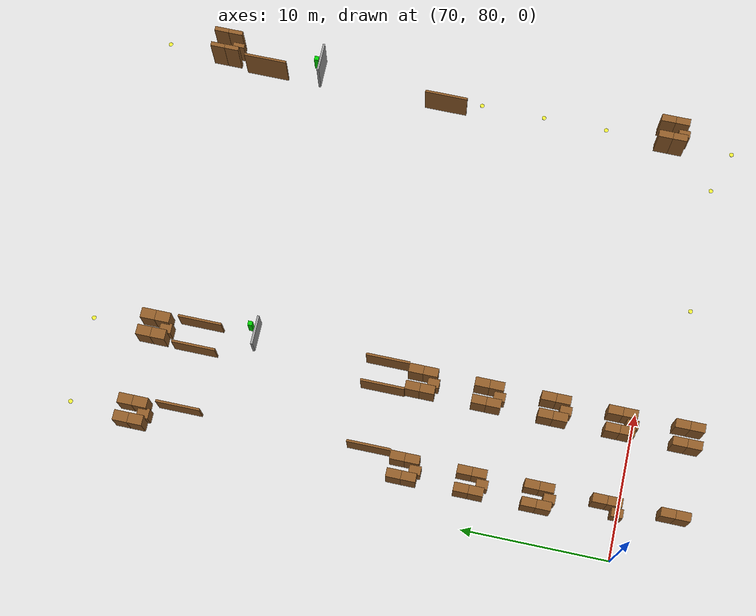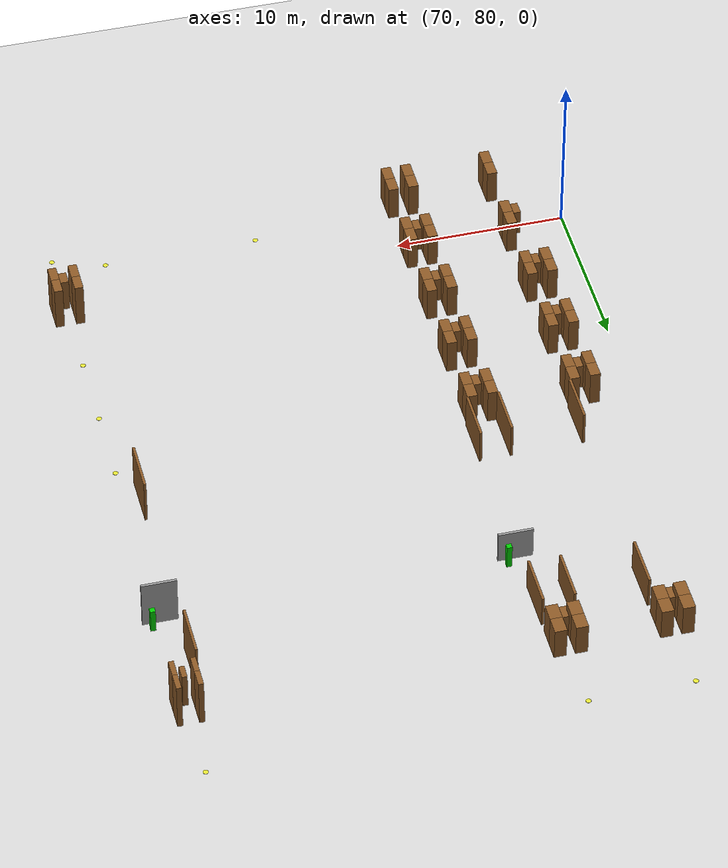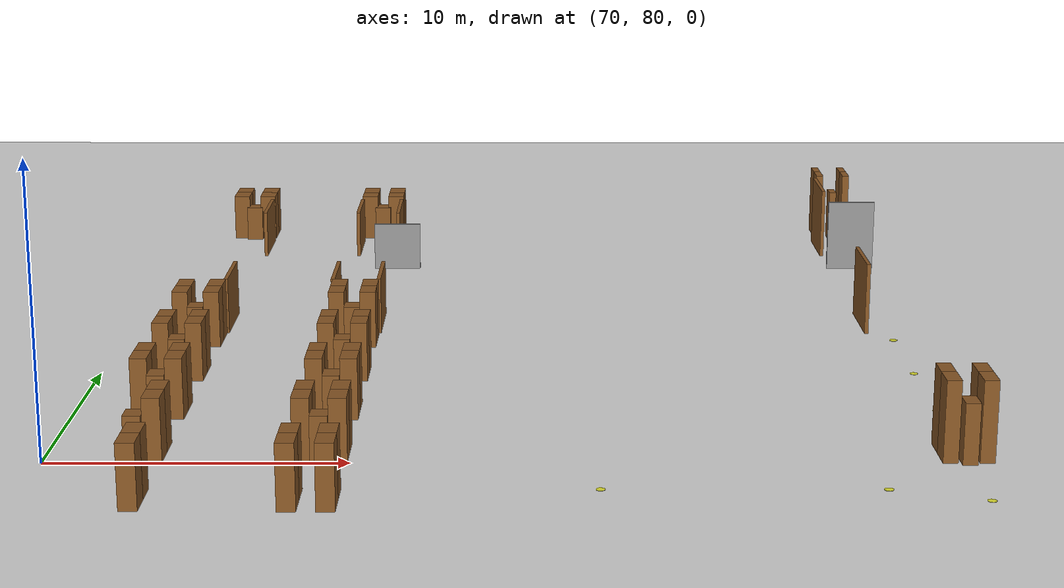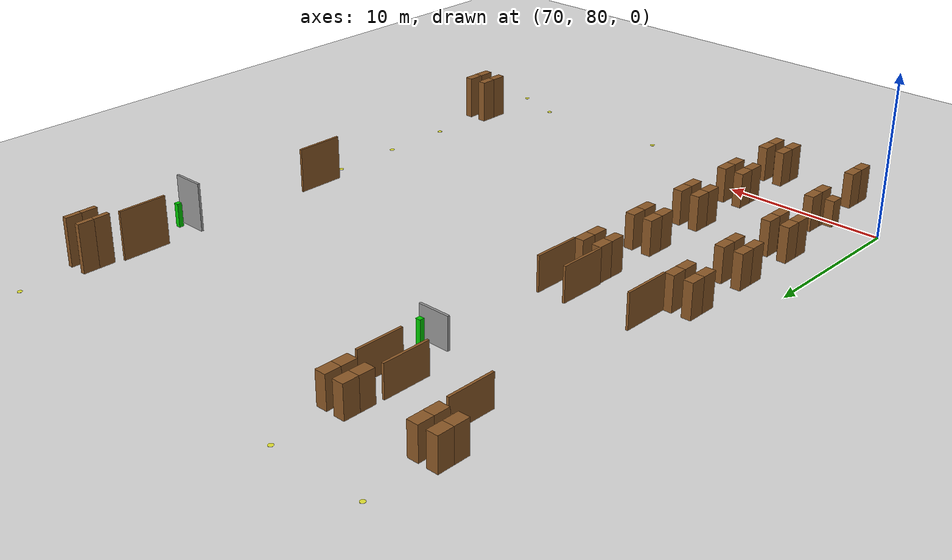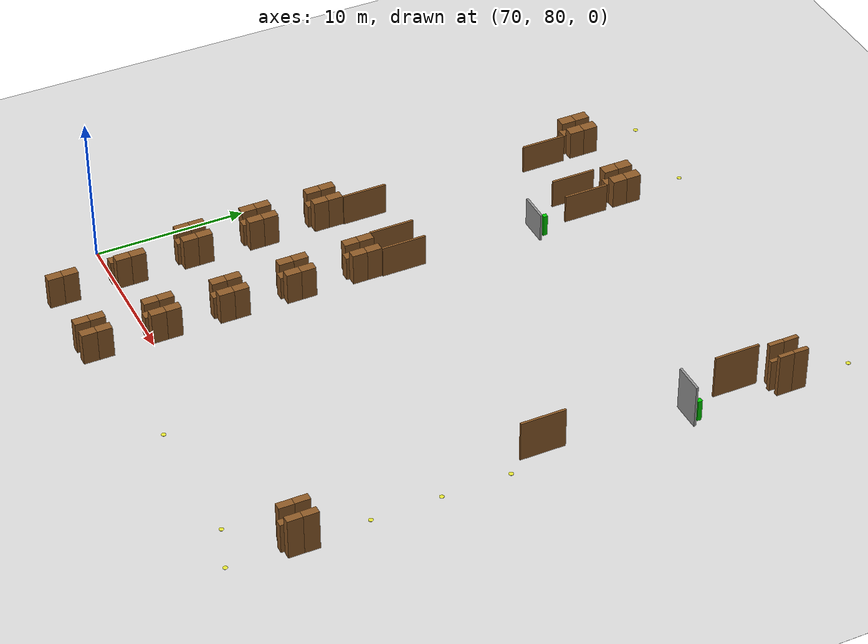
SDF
<sdf version="1.9">
 <world name="realistic_warehouse_150x200m">
  <model name="ground_plane">
   <static>true</static>
   <pose>68.5 102.0 0 0 0 0</pose>
   <link name="ground_link">
    <visual name="ground_visual">
     <geometry><box><size>127.0 194.0 0.01</size></box></geometry>
     <material><ambient>0.85 0.85 0.85 1.0</ambient><diffuse>0.85 0.85 0.85 1.0</diffuse></material>
    </visual>
    <collision name="ground_visual_collision">
     <geometry><box><size>127.0 194.0 0.01</size></box></geometry>
    </collision>
    <collision name="ground_collision">
     <geometry><plane><normal>0 0 1</normal><size>127.0 194.0</size></plane></geometry>
    </collision>
   </link>
  </model>
  <model name="dock_wall_Zone_E_C2_783">
   <static>true</static>
   <pose>80.0 106.2 1.0 0 0 0</pose>
   <link name="dock_wall_Zone_E_C2_783_link">
    <visual name="dock_wall_Zone_E_C2_783_vis">
     <geometry><box><size>2.0 0.15 2.0</size></box></geometry>
     <material><ambient>0.6 0.6 0.6 1.0</ambient><diffuse>0.6 0.6 0.6 1.0</diffuse></material>
    </visual>
    <collision name="dock_wall_Zone_E_C2_783_vis_collision">
     <geometry><box><size>2.0 0.15 2.0</size></box></geometry>
    </collision>
   </link>
  </model>
  <model name="charger_Zone_E_C2_784">
   <static>true</static>
   <pose>80.5 106.7 0.75 0 0 0</pose>
   <link name="charger_Zone_E_C2_784_link">
    <visual name="charger_Zone_E_C2_784_vis">
     <geometry><box><size>0.3 0.3 1.5</size></box></geometry>
     <material><ambient>0.0 0.8 0.0 1.0</ambient><diffuse>0.0 0.8 0.0 1.0</diffuse></material>
    </visual>
    <collision name="charger_Zone_E_C2_784_vis_collision">
     <geometry><box><size>0.3 0.3 1.5</size></box></geometry>
    </collision>
   </link>
  </model>
  <model name="aisle_R_Zone_E_A3_entry_847">
   <static>true</static>
   <pose>73.9 110.0 1.0 0 0 0</pose>
   <link name="aisle_R_Zone_E_A3_entry_847_link">
    <visual name="aisle_R_Zone_E_A3_entry_847_vis">
     <geometry><box><size>0.15 3.0 2.0</size></box></geometry>
     <material><ambient>0.55 0.35 0.15 1.0</ambient><diffuse>0.55 0.35 0.15 1.0</diffuse></material>
    </visual>
    <collision name="aisle_R_Zone_E_A3_entry_847_vis_collision">
     <geometry><box><size>0.15 3.0 2.0</size></box></geometry>
    </collision>
   </link>
  </model>
  <model name="rack_Zone_E_A3_S0_848">
   <static>true</static>
   <pose>72.4 112.5 1.0 0 0 0</pose>
   <link name="rack_Zone_E_A3_S0_848_link">
    <visual name="rack_Zone_E_A3_S0_848_vis">
     <geometry><box><size>0.7 1.0 2.0</size></box></geometry>
     <material><ambient>0.55 0.35 0.15 1.0</ambient><diffuse>0.55 0.35 0.15 1.0</diffuse></material>
    </visual>
    <collision name="rack_Zone_E_A3_S0_848_vis_collision">
     <geometry><box><size>0.7 1.0 2.0</size></box></geometry>
    </collision>
   </link>
  </model>
  <model name="rack_Zone_E_A3_S0_849">
   <static>true</static>
   <pose>72.4 113.5 1.0 0 0 0</pose>
   <link name="rack_Zone_E_A3_S0_849_link">
    <visual name="rack_Zone_E_A3_S0_849_vis">
     <geometry><box><size>0.7 1.0 2.0</size></box></geometry>
     <material><ambient>0.55 0.35 0.15 1.0</ambient><diffuse>0.55 0.35 0.15 1.0</diffuse></material>
    </visual>
    <collision name="rack_Zone_E_A3_S0_849_vis_collision">
     <geometry><box><size>0.7 1.0 2.0</size></box></geometry>
    </collision>
   </link>
  </model>
  <model name="rack_Zone_E_A3_S0_850">
   <static>true</static>
   <pose>73.6 112.5 1.0 0 0 0</pose>
   <link name="rack_Zone_E_A3_S0_850_link">
    <visual name="rack_Zone_E_A3_S0_850_vis">
     <geometry><box><size>0.7 1.0 2.0</size></box></geometry>
     <material><ambient>0.55 0.35 0.15 1.0</ambient><diffuse>0.55 0.35 0.15 1.0</diffuse></material>
    </visual>
    <collision name="rack_Zone_E_A3_S0_850_vis_collision">
     <geometry><box><size>0.7 1.0 2.0</size></box></geometry>
    </collision>
   </link>
  </model>
  <model name="rack_Zone_E_A3_S0_851">
   <static>true</static>
   <pose>73.6 113.5 1.0 0 0 0</pose>
   <link name="rack_Zone_E_A3_S0_851_link">
    <visual name="rack_Zone_E_A3_S0_851_vis">
     <geometry><box><size>0.7 1.0 2.0</size></box></geometry>
     <material><ambient>0.55 0.35 0.15 1.0</ambient><diffuse>0.55 0.35 0.15 1.0</diffuse></material>
    </visual>
    <collision name="rack_Zone_E_A3_S0_851_vis_collision">
     <geometry><box><size>0.7 1.0 2.0</size></box></geometry>
    </collision>
   </link>
  </model>
  <model name="rack_Zone_E_A3_S0_852">
   <static>true</static>
   <pose>73.0 112.2 0.75 0 0 0</pose>
   <link name="rack_Zone_E_A3_S0_852_link">
    <visual name="rack_Zone_E_A3_S0_852_vis">
     <geometry><box><size>0.7 0.8 1.5</size></box></geometry>
     <material><ambient>0.55 0.35 0.15 1.0</ambient><diffuse>0.55 0.35 0.15 1.0</diffuse></material>
    </visual>
    <collision name="rack_Zone_E_A3_S0_852_vis_collision">
     <geometry><box><size>0.7 0.8 1.5</size></box></geometry>
    </collision>
   </link>
  </model>
  <model name="cross_Zone_E_A3_S1_853">
   <static>true</static>
   <pose>73.0 117.5 0.01 0 0 0</pose>
   <link name="cross_Zone_E_A3_S1_853_link">
    <visual name="cross_Zone_E_A3_S1_853_vis">
     <geometry><cylinder><radius>0.15</radius><length>0.02</length></cylinder></geometry>
     <material><ambient>0.9 0.9 0.2 1.0</ambient><diffuse>0.9 0.9 0.2 1.0</diffuse></material>
    </visual>
    <collision name="cross_Zone_E_A3_S1_853_vis_collision">
     <geometry><cylinder><radius>0.15</radius><length>0.02</length></cylinder></geometry>
    </collision>
   </link>
  </model>
  <model name="aisle_L_Zone_E_A4_entry_866">
   <static>true</static>
   <pose>78.1 110.0 1.0 0 0 0</pose>
   <link name="aisle_L_Zone_E_A4_entry_866_link">
    <visual name="aisle_L_Zone_E_A4_entry_866_vis">
     <geometry><box><size>0.15 3.0 2.0</size></box></geometry>
     <material><ambient>0.55 0.35 0.15 1.0</ambient><diffuse>0.55 0.35 0.15 1.0</diffuse></material>
    </visual>
    <collision name="aisle_L_Zone_E_A4_entry_866_vis_collision">
     <geometry><box><size>0.15 3.0 2.0</size></box></geometry>
    </collision>
   </link>
  </model>
  <model name="aisle_R_Zone_E_A4_entry_867">
   <static>true</static>
   <pose>79.9 110.0 1.0 0 0 0</pose>
   <link name="aisle_R_Zone_E_A4_entry_867_link">
    <visual name="aisle_R_Zone_E_A4_entry_867_vis">
     <geometry><box><size>0.15 3.0 2.0</size></box></geometry>
     <material><ambient>0.55 0.35 0.15 1.0</ambient><diffuse>0.55 0.35 0.15 1.0</diffuse></material>
    </visual>
    <collision name="aisle_R_Zone_E_A4_entry_867_vis_collision">
     <geometry><box><size>0.15 3.0 2.0</size></box></geometry>
    </collision>
   </link>
  </model>
  <model name="rack_Zone_E_A4_S0_868">
   <static>true</static>
   <pose>78.4 112.5 1.0 0 0 0</pose>
   <link name="rack_Zone_E_A4_S0_868_link">
    <visual name="rack_Zone_E_A4_S0_868_vis">
     <geometry><box><size>0.7 1.0 2.0</size></box></geometry>
     <material><ambient>0.55 0.35 0.15 1.0</ambient><diffuse>0.55 0.35 0.15 1.0</diffuse></material>
    </visual>
    <collision name="rack_Zone_E_A4_S0_868_vis_collision">
     <geometry><box><size>0.7 1.0 2.0</size></box></geometry>
    </collision>
   </link>
  </model>
  <model name="rack_Zone_E_A4_S0_869">
   <static>true</static>
   <pose>78.4 113.5 1.0 0 0 0</pose>
   <link name="rack_Zone_E_A4_S0_869_link">
    <visual name="rack_Zone_E_A4_S0_869_vis">
     <geometry><box><size>0.7 1.0 2.0</size></box></geometry>
     <material><ambient>0.55 0.35 0.15 1.0</ambient><diffuse>0.55 0.35 0.15 1.0</diffuse></material>
    </visual>
    <collision name="rack_Zone_E_A4_S0_869_vis_collision">
     <geometry><box><size>0.7 1.0 2.0</size></box></geometry>
    </collision>
   </link>
  </model>
  <model name="rack_Zone_E_A4_S0_870">
   <static>true</static>
   <pose>79.6 112.5 1.0 0 0 0</pose>
   <link name="rack_Zone_E_A4_S0_870_link">
    <visual name="rack_Zone_E_A4_S0_870_vis">
     <geometry><box><size>0.7 1.0 2.0</size></box></geometry>
     <material><ambient>0.55 0.35 0.15 1.0</ambient><diffuse>0.55 0.35 0.15 1.0</diffuse></material>
    </visual>
    <collision name="rack_Zone_E_A4_S0_870_vis_collision">
     <geometry><box><size>0.7 1.0 2.0</size></box></geometry>
    </collision>
   </link>
  </model>
  <model name="rack_Zone_E_A4_S0_871">
   <static>true</static>
   <pose>79.6 113.5 1.0 0 0 0</pose>
   <link name="rack_Zone_E_A4_S0_871_link">
    <visual name="rack_Zone_E_A4_S0_871_vis">
     <geometry><box><size>0.7 1.0 2.0</size></box></geometry>
     <material><ambient>0.55 0.35 0.15 1.0</ambient><diffuse>0.55 0.35 0.15 1.0</diffuse></material>
    </visual>
    <collision name="rack_Zone_E_A4_S0_871_vis_collision">
     <geometry><box><size>0.7 1.0 2.0</size></box></geometry>
    </collision>
   </link>
  </model>
  <model name="rack_Zone_E_A4_S0_872">
   <static>true</static>
   <pose>79.0 112.2 0.75 0 0 0</pose>
   <link name="rack_Zone_E_A4_S0_872_link">
    <visual name="rack_Zone_E_A4_S0_872_vis">
     <geometry><box><size>0.7 0.8 1.5</size></box></geometry>
     <material><ambient>0.55 0.35 0.15 1.0</ambient><diffuse>0.55 0.35 0.15 1.0</diffuse></material>
    </visual>
    <collision name="rack_Zone_E_A4_S0_872_vis_collision">
     <geometry><box><size>0.7 0.8 1.5</size></box></geometry>
    </collision>
   </link>
  </model>
  <model name="cross_Zone_E_A4_S1_873">
   <static>true</static>
   <pose>79.0 117.5 0.01 0 0 0</pose>
   <link name="cross_Zone_E_A4_S1_873_link">
    <visual name="cross_Zone_E_A4_S1_873_vis">
     <geometry><cylinder><radius>0.15</radius><length>0.02</length></cylinder></geometry>
     <material><ambient>0.9 0.9 0.2 1.0</ambient><diffuse>0.9 0.9 0.2 1.0</diffuse></material>
    </visual>
    <collision name="cross_Zone_E_A4_S1_873_vis_collision">
     <geometry><cylinder><radius>0.15</radius><length>0.02</length></cylinder></geometry>
    </collision>
   </link>
  </model>
  <model name="dock_wall_Zone_F_C1_886">
   <static>true</static>
   <pose>100.0 106.2 1.5 0 0 0</pose>
   <link name="dock_wall_Zone_F_C1_886_link">
    <visual name="dock_wall_Zone_F_C1_886_vis">
     <geometry><box><size>2.0 0.15 3.0</size></box></geometry>
     <material><ambient>0.6 0.6 0.6 1.0</ambient><diffuse>0.6 0.6 0.6 1.0</diffuse></material>
    </visual>
    <collision name="dock_wall_Zone_F_C1_886_vis_collision">
     <geometry><box><size>2.0 0.15 3.0</size></box></geometry>
    </collision>
   </link>
  </model>
  <model name="charger_Zone_F_C1_887">
   <static>true</static>
   <pose>100.5 106.7 0.75 0 0 0</pose>
   <link name="charger_Zone_F_C1_887_link">
    <visual name="charger_Zone_F_C1_887_vis">
     <geometry><box><size>0.3 0.3 1.5</size></box></geometry>
     <material><ambient>0.0 0.8 0.0 1.0</ambient><diffuse>0.0 0.8 0.0 1.0</diffuse></material>
    </visual>
    <collision name="charger_Zone_F_C1_887_vis_collision">
     <geometry><box><size>0.3 0.3 1.5</size></box></geometry>
    </collision>
   </link>
  </model>
  <model name="aisle_L_Zone_F_A0_entry_891">
   <static>true</static>
   <pose>99.1 110.0 1.5 0 0 0</pose>
   <link name="aisle_L_Zone_F_A0_entry_891_link">
    <visual name="aisle_L_Zone_F_A0_entry_891_vis">
     <geometry><box><size>0.15 3.0 3.0</size></box></geometry>
     <material><ambient>0.55 0.35 0.15 1.0</ambient><diffuse>0.55 0.35 0.15 1.0</diffuse></material>
    </visual>
    <collision name="aisle_L_Zone_F_A0_entry_891_vis_collision">
     <geometry><box><size>0.15 3.0 3.0</size></box></geometry>
    </collision>
   </link>
  </model>
  <model name="rack_Zone_F_A0_S0_893">
   <static>true</static>
   <pose>99.4 112.5 1.5 0 0 0</pose>
   <link name="rack_Zone_F_A0_S0_893_link">
    <visual name="rack_Zone_F_A0_S0_893_vis">
     <geometry><box><size>0.3 1.0 3.0</size></box></geometry>
     <material><ambient>0.55 0.35 0.15 1.0</ambient><diffuse>0.55 0.35 0.15 1.0</diffuse></material>
    </visual>
    <collision name="rack_Zone_F_A0_S0_893_vis_collision">
     <geometry><box><size>0.3 1.0 3.0</size></box></geometry>
    </collision>
   </link>
  </model>
  <model name="rack_Zone_F_A0_S0_894">
   <static>true</static>
   <pose>99.4 113.5 1.5 0 0 0</pose>
   <link name="rack_Zone_F_A0_S0_894_link">
    <visual name="rack_Zone_F_A0_S0_894_vis">
     <geometry><box><size>0.3 1.0 3.0</size></box></geometry>
     <material><ambient>0.55 0.35 0.15 1.0</ambient><diffuse>0.55 0.35 0.15 1.0</diffuse></material>
    </visual>
    <collision name="rack_Zone_F_A0_S0_894_vis_collision">
     <geometry><box><size>0.3 1.0 3.0</size></box></geometry>
    </collision>
   </link>
  </model>
  <model name="rack_Zone_F_A0_S0_895">
   <static>true</static>
   <pose>100.6 112.5 1.5 0 0 0</pose>
   <link name="rack_Zone_F_A0_S0_895_link">
    <visual name="rack_Zone_F_A0_S0_895_vis">
     <geometry><box><size>0.3 1.0 3.0</size></box></geometry>
     <material><ambient>0.55 0.35 0.15 1.0</ambient><diffuse>0.55 0.35 0.15 1.0</diffuse></material>
    </visual>
    <collision name="rack_Zone_F_A0_S0_895_vis_collision">
     <geometry><box><size>0.3 1.0 3.0</size></box></geometry>
    </collision>
   </link>
  </model>
  <model name="rack_Zone_F_A0_S0_896">
   <static>true</static>
   <pose>100.6 113.5 1.5 0 0 0</pose>
   <link name="rack_Zone_F_A0_S0_896_link">
    <visual name="rack_Zone_F_A0_S0_896_vis">
     <geometry><box><size>0.3 1.0 3.0</size></box></geometry>
     <material><ambient>0.55 0.35 0.15 1.0</ambient><diffuse>0.55 0.35 0.15 1.0</diffuse></material>
    </visual>
    <collision name="rack_Zone_F_A0_S0_896_vis_collision">
     <geometry><box><size>0.3 1.0 3.0</size></box></geometry>
    </collision>
   </link>
  </model>
  <model name="rack_Zone_F_A0_S0_897">
   <static>true</static>
   <pose>100.0 112.2 1.125 0 0 0</pose>
   <link name="rack_Zone_F_A0_S0_897_link">
    <visual name="rack_Zone_F_A0_S0_897_vis">
     <geometry><box><size>0.3 0.8 2.25</size></box></geometry>
     <material><ambient>0.55 0.35 0.15 1.0</ambient><diffuse>0.55 0.35 0.15 1.0</diffuse></material>
    </visual>
    <collision name="rack_Zone_F_A0_S0_897_vis_collision">
     <geometry><box><size>0.3 0.8 2.25</size></box></geometry>
    </collision>
   </link>
  </model>
  <model name="cross_Zone_F_A0_S1_898">
   <static>true</static>
   <pose>100.0 117.5 0.01 0 0 0</pose>
   <link name="cross_Zone_F_A0_S1_898_link">
    <visual name="cross_Zone_F_A0_S1_898_vis">
     <geometry><cylinder><radius>0.15</radius><length>0.02</length></cylinder></geometry>
     <material><ambient>0.9 0.9 0.2 1.0</ambient><diffuse>0.9 0.9 0.2 1.0</diffuse></material>
    </visual>
    <collision name="cross_Zone_F_A0_S1_898_vis_collision">
     <geometry><cylinder><radius>0.15</radius><length>0.02</length></cylinder></geometry>
    </collision>
   </link>
  </model>
  <model name="rack_Zone_H_A3_S3_1372">
   <static>true</static>
   <pose>73.6 76.0 1.1 0 0 0</pose>
   <link name="rack_Zone_H_A3_S3_1372_link">
    <visual name="rack_Zone_H_A3_S3_1372_vis">
     <geometry><box><size>0.6 1.0 2.2</size></box></geometry>
     <material><ambient>0.55 0.35 0.15 1.0</ambient><diffuse>0.55 0.35 0.15 1.0</diffuse></material>
    </visual>
    <collision name="rack_Zone_H_A3_S3_1372_vis_collision">
     <geometry><box><size>0.6 1.0 2.2</size></box></geometry>
    </collision>
   </link>
  </model>
  <model name="rack_Zone_H_A3_S3_1373">
   <static>true</static>
   <pose>73.6 77.0 1.1 0 0 0</pose>
   <link name="rack_Zone_H_A3_S3_1373_link">
    <visual name="rack_Zone_H_A3_S3_1373_vis">
     <geometry><box><size>0.6 1.0 2.2</size></box></geometry>
     <material><ambient>0.55 0.35 0.15 1.0</ambient><diffuse>0.55 0.35 0.15 1.0</diffuse></material>
    </visual>
    <collision name="rack_Zone_H_A3_S3_1373_vis_collision">
     <geometry><box><size>0.6 1.0 2.2</size></box></geometry>
    </collision>
   </link>
  </model>
  <model name="rack_Zone_H_A3_S4_1377">
   <static>true</static>
   <pose>73.6 80.5 1.1 0 0 0</pose>
   <link name="rack_Zone_H_A3_S4_1377_link">
    <visual name="rack_Zone_H_A3_S4_1377_vis">
     <geometry><box><size>0.6 1.0 2.2</size></box></geometry>
     <material><ambient>0.55 0.35 0.15 1.0</ambient><diffuse>0.55 0.35 0.15 1.0</diffuse></material>
    </visual>
    <collision name="rack_Zone_H_A3_S4_1377_vis_collision">
     <geometry><box><size>0.6 1.0 2.2</size></box></geometry>
    </collision>
   </link>
  </model>
  <model name="rack_Zone_H_A3_S4_1378">
   <static>true</static>
   <pose>73.6 81.5 1.1 0 0 0</pose>
   <link name="rack_Zone_H_A3_S4_1378_link">
    <visual name="rack_Zone_H_A3_S4_1378_vis">
     <geometry><box><size>0.6 1.0 2.2</size></box></geometry>
     <material><ambient>0.55 0.35 0.15 1.0</ambient><diffuse>0.55 0.35 0.15 1.0</diffuse></material>
    </visual>
    <collision name="rack_Zone_H_A3_S4_1378_vis_collision">
     <geometry><box><size>0.6 1.0 2.2</size></box></geometry>
    </collision>
   </link>
  </model>
  <model name="rack_Zone_H_A3_S4_1379">
   <static>true</static>
   <pose>73.0 80.2 0.8250000000000001 0 0 0</pose>
   <link name="rack_Zone_H_A3_S4_1379_link">
    <visual name="rack_Zone_H_A3_S4_1379_vis">
     <geometry><box><size>0.6 0.8 1.6500000000000001</size></box></geometry>
     <material><ambient>0.55 0.35 0.15 1.0</ambient><diffuse>0.55 0.35 0.15 1.0</diffuse></material>
    </visual>
    <collision name="rack_Zone_H_A3_S4_1379_vis_collision">
     <geometry><box><size>0.6 0.8 1.6500000000000001</size></box></geometry>
    </collision>
   </link>
  </model>
  <model name="rack_Zone_H_A3_S5_1380">
   <static>true</static>
   <pose>72.4 85.0 1.1 0 0 0</pose>
   <link name="rack_Zone_H_A3_S5_1380_link">
    <visual name="rack_Zone_H_A3_S5_1380_vis">
     <geometry><box><size>0.6 1.0 2.2</size></box></geometry>
     <material><ambient>0.55 0.35 0.15 1.0</ambient><diffuse>0.55 0.35 0.15 1.0</diffuse></material>
    </visual>
    <collision name="rack_Zone_H_A3_S5_1380_vis_collision">
     <geometry><box><size>0.6 1.0 2.2</size></box></geometry>
    </collision>
   </link>
  </model>
  <model name="rack_Zone_H_A3_S5_1381">
   <static>true</static>
   <pose>72.4 86.0 1.1 0 0 0</pose>
   <link name="rack_Zone_H_A3_S5_1381_link">
    <visual name="rack_Zone_H_A3_S5_1381_vis">
     <geometry><box><size>0.6 1.0 2.2</size></box></geometry>
     <material><ambient>0.55 0.35 0.15 1.0</ambient><diffuse>0.55 0.35 0.15 1.0</diffuse></material>
    </visual>
    <collision name="rack_Zone_H_A3_S5_1381_vis_collision">
     <geometry><box><size>0.6 1.0 2.2</size></box></geometry>
    </collision>
   </link>
  </model>
  <model name="rack_Zone_H_A3_S5_1382">
   <static>true</static>
   <pose>73.6 85.0 1.1 0 0 0</pose>
   <link name="rack_Zone_H_A3_S5_1382_link">
    <visual name="rack_Zone_H_A3_S5_1382_vis">
     <geometry><box><size>0.6 1.0 2.2</size></box></geometry>
     <material><ambient>0.55 0.35 0.15 1.0</ambient><diffuse>0.55 0.35 0.15 1.0</diffuse></material>
    </visual>
    <collision name="rack_Zone_H_A3_S5_1382_vis_collision">
     <geometry><box><size>0.6 1.0 2.2</size></box></geometry>
    </collision>
   </link>
  </model>
  <model name="rack_Zone_H_A3_S5_1383">
   <static>true</static>
   <pose>73.6 86.0 1.1 0 0 0</pose>
   <link name="rack_Zone_H_A3_S5_1383_link">
    <visual name="rack_Zone_H_A3_S5_1383_vis">
     <geometry><box><size>0.6 1.0 2.2</size></box></geometry>
     <material><ambient>0.55 0.35 0.15 1.0</ambient><diffuse>0.55 0.35 0.15 1.0</diffuse></material>
    </visual>
    <collision name="rack_Zone_H_A3_S5_1383_vis_collision">
     <geometry><box><size>0.6 1.0 2.2</size></box></geometry>
    </collision>
   </link>
  </model>
  <model name="rack_Zone_H_A3_S5_1384">
   <static>true</static>
   <pose>73.0 84.7 0.8250000000000001 0 0 0</pose>
   <link name="rack_Zone_H_A3_S5_1384_link">
    <visual name="rack_Zone_H_A3_S5_1384_vis">
     <geometry><box><size>0.6 0.8 1.6500000000000001</size></box></geometry>
     <material><ambient>0.55 0.35 0.15 1.0</ambient><diffuse>0.55 0.35 0.15 1.0</diffuse></material>
    </visual>
    <collision name="rack_Zone_H_A3_S5_1384_vis_collision">
     <geometry><box><size>0.6 0.8 1.6500000000000001</size></box></geometry>
    </collision>
   </link>
  </model>
  <model name="rack_Zone_H_A3_S6_1385">
   <static>true</static>
   <pose>72.4 89.5 1.1 0 0 0</pose>
   <link name="rack_Zone_H_A3_S6_1385_link">
    <visual name="rack_Zone_H_A3_S6_1385_vis">
     <geometry><box><size>0.6 1.0 2.2</size></box></geometry>
     <material><ambient>0.55 0.35 0.15 1.0</ambient><diffuse>0.55 0.35 0.15 1.0</diffuse></material>
    </visual>
    <collision name="rack_Zone_H_A3_S6_1385_vis_collision">
     <geometry><box><size>0.6 1.0 2.2</size></box></geometry>
    </collision>
   </link>
  </model>
  <model name="rack_Zone_H_A3_S6_1386">
   <static>true</static>
   <pose>72.4 90.5 1.1 0 0 0</pose>
   <link name="rack_Zone_H_A3_S6_1386_link">
    <visual name="rack_Zone_H_A3_S6_1386_vis">
     <geometry><box><size>0.6 1.0 2.2</size></box></geometry>
     <material><ambient>0.55 0.35 0.15 1.0</ambient><diffuse>0.55 0.35 0.15 1.0</diffuse></material>
    </visual>
    <collision name="rack_Zone_H_A3_S6_1386_vis_collision">
     <geometry><box><size>0.6 1.0 2.2</size></box></geometry>
    </collision>
   </link>
  </model>
  <model name="rack_Zone_H_A3_S6_1387">
   <static>true</static>
   <pose>73.6 89.5 1.1 0 0 0</pose>
   <link name="rack_Zone_H_A3_S6_1387_link">
    <visual name="rack_Zone_H_A3_S6_1387_vis">
     <geometry><box><size>0.6 1.0 2.2</size></box></geometry>
     <material><ambient>0.55 0.35 0.15 1.0</ambient><diffuse>0.55 0.35 0.15 1.0</diffuse></material>
    </visual>
    <collision name="rack_Zone_H_A3_S6_1387_vis_collision">
     <geometry><box><size>0.6 1.0 2.2</size></box></geometry>
    </collision>
   </link>
  </model>
  <model name="rack_Zone_H_A3_S6_1388">
   <static>true</static>
   <pose>73.6 90.5 1.1 0 0 0</pose>
   <link name="rack_Zone_H_A3_S6_1388_link">
    <visual name="rack_Zone_H_A3_S6_1388_vis">
     <geometry><box><size>0.6 1.0 2.2</size></box></geometry>
     <material><ambient>0.55 0.35 0.15 1.0</ambient><diffuse>0.55 0.35 0.15 1.0</diffuse></material>
    </visual>
    <collision name="rack_Zone_H_A3_S6_1388_vis_collision">
     <geometry><box><size>0.6 1.0 2.2</size></box></geometry>
    </collision>
   </link>
  </model>
  <model name="rack_Zone_H_A3_S6_1389">
   <static>true</static>
   <pose>73.0 89.2 0.8250000000000001 0 0 0</pose>
   <link name="rack_Zone_H_A3_S6_1389_link">
    <visual name="rack_Zone_H_A3_S6_1389_vis">
     <geometry><box><size>0.6 0.8 1.6500000000000001</size></box></geometry>
     <material><ambient>0.55 0.35 0.15 1.0</ambient><diffuse>0.55 0.35 0.15 1.0</diffuse></material>
    </visual>
    <collision name="rack_Zone_H_A3_S6_1389_vis_collision">
     <geometry><box><size>0.6 0.8 1.6500000000000001</size></box></geometry>
    </collision>
   </link>
  </model>
  <model name="rack_Zone_H_A3_S7_1390">
   <static>true</static>
   <pose>72.4 94.0 1.1 0 0 0</pose>
   <link name="rack_Zone_H_A3_S7_1390_link">
    <visual name="rack_Zone_H_A3_S7_1390_vis">
     <geometry><box><size>0.6 1.0 2.2</size></box></geometry>
     <material><ambient>0.55 0.35 0.15 1.0</ambient><diffuse>0.55 0.35 0.15 1.0</diffuse></material>
    </visual>
    <collision name="rack_Zone_H_A3_S7_1390_vis_collision">
     <geometry><box><size>0.6 1.0 2.2</size></box></geometry>
    </collision>
   </link>
  </model>
  <model name="rack_Zone_H_A3_S7_1391">
   <static>true</static>
   <pose>72.4 95.0 1.1 0 0 0</pose>
   <link name="rack_Zone_H_A3_S7_1391_link">
    <visual name="rack_Zone_H_A3_S7_1391_vis">
     <geometry><box><size>0.6 1.0 2.2</size></box></geometry>
     <material><ambient>0.55 0.35 0.15 1.0</ambient><diffuse>0.55 0.35 0.15 1.0</diffuse></material>
    </visual>
    <collision name="rack_Zone_H_A3_S7_1391_vis_collision">
     <geometry><box><size>0.6 1.0 2.2</size></box></geometry>
    </collision>
   </link>
  </model>
  <model name="rack_Zone_H_A3_S7_1392">
   <static>true</static>
   <pose>73.6 94.0 1.1 0 0 0</pose>
   <link name="rack_Zone_H_A3_S7_1392_link">
    <visual name="rack_Zone_H_A3_S7_1392_vis">
     <geometry><box><size>0.6 1.0 2.2</size></box></geometry>
     <material><ambient>0.55 0.35 0.15 1.0</ambient><diffuse>0.55 0.35 0.15 1.0</diffuse></material>
    </visual>
    <collision name="rack_Zone_H_A3_S7_1392_vis_collision">
     <geometry><box><size>0.6 1.0 2.2</size></box></geometry>
    </collision>
   </link>
  </model>
  <model name="rack_Zone_H_A3_S7_1393">
   <static>true</static>
   <pose>73.6 95.0 1.1 0 0 0</pose>
   <link name="rack_Zone_H_A3_S7_1393_link">
    <visual name="rack_Zone_H_A3_S7_1393_vis">
     <geometry><box><size>0.6 1.0 2.2</size></box></geometry>
     <material><ambient>0.55 0.35 0.15 1.0</ambient><diffuse>0.55 0.35 0.15 1.0</diffuse></material>
    </visual>
    <collision name="rack_Zone_H_A3_S7_1393_vis_collision">
     <geometry><box><size>0.6 1.0 2.2</size></box></geometry>
    </collision>
   </link>
  </model>
  <model name="rack_Zone_H_A3_S7_1394">
   <static>true</static>
   <pose>73.0 93.7 0.8250000000000001 0 0 0</pose>
   <link name="rack_Zone_H_A3_S7_1394_link">
    <visual name="rack_Zone_H_A3_S7_1394_vis">
     <geometry><box><size>0.6 0.8 1.6500000000000001</size></box></geometry>
     <material><ambient>0.55 0.35 0.15 1.0</ambient><diffuse>0.55 0.35 0.15 1.0</diffuse></material>
    </visual>
    <collision name="rack_Zone_H_A3_S7_1394_vis_collision">
     <geometry><box><size>0.6 0.8 1.6500000000000001</size></box></geometry>
    </collision>
   </link>
  </model>
  <model name="aisle_R_Zone_H_A3_exit_1396">
   <static>true</static>
   <pose>73.9 97.0 1.1 0 0 0</pose>
   <link name="aisle_R_Zone_H_A3_exit_1396_link">
    <visual name="aisle_R_Zone_H_A3_exit_1396_vis">
     <geometry><box><size>0.15 3.0 2.2</size></box></geometry>
     <material><ambient>0.55 0.35 0.15 1.0</ambient><diffuse>0.55 0.35 0.15 1.0</diffuse></material>
    </visual>
    <collision name="aisle_R_Zone_H_A3_exit_1396_vis_collision">
     <geometry><box><size>0.15 3.0 2.2</size></box></geometry>
    </collision>
   </link>
  </model>
  <model name="rack_Zone_H_A4_S3_1414">
   <static>true</static>
   <pose>78.4 76.0 1.1 0 0 0</pose>
   <link name="rack_Zone_H_A4_S3_1414_link">
    <visual name="rack_Zone_H_A4_S3_1414_vis">
     <geometry><box><size>0.6 1.0 2.2</size></box></geometry>
     <material><ambient>0.55 0.35 0.15 1.0</ambient><diffuse>0.55 0.35 0.15 1.0</diffuse></material>
    </visual>
    <collision name="rack_Zone_H_A4_S3_1414_vis_collision">
     <geometry><box><size>0.6 1.0 2.2</size></box></geometry>
    </collision>
   </link>
  </model>
  <model name="rack_Zone_H_A4_S3_1415">
   <static>true</static>
   <pose>78.4 77.0 1.1 0 0 0</pose>
   <link name="rack_Zone_H_A4_S3_1415_link">
    <visual name="rack_Zone_H_A4_S3_1415_vis">
     <geometry><box><size>0.6 1.0 2.2</size></box></geometry>
     <material><ambient>0.55 0.35 0.15 1.0</ambient><diffuse>0.55 0.35 0.15 1.0</diffuse></material>
    </visual>
    <collision name="rack_Zone_H_A4_S3_1415_vis_collision">
     <geometry><box><size>0.6 1.0 2.2</size></box></geometry>
    </collision>
   </link>
  </model>
  <model name="rack_Zone_H_A4_S3_1416">
   <static>true</static>
   <pose>79.6 76.0 1.1 0 0 0</pose>
   <link name="rack_Zone_H_A4_S3_1416_link">
    <visual name="rack_Zone_H_A4_S3_1416_vis">
     <geometry><box><size>0.6 1.0 2.2</size></box></geometry>
     <material><ambient>0.55 0.35 0.15 1.0</ambient><diffuse>0.55 0.35 0.15 1.0</diffuse></material>
    </visual>
    <collision name="rack_Zone_H_A4_S3_1416_vis_collision">
     <geometry><box><size>0.6 1.0 2.2</size></box></geometry>
    </collision>
   </link>
  </model>
  <model name="rack_Zone_H_A4_S3_1417">
   <static>true</static>
   <pose>79.6 77.0 1.1 0 0 0</pose>
   <link name="rack_Zone_H_A4_S3_1417_link">
    <visual name="rack_Zone_H_A4_S3_1417_vis">
     <geometry><box><size>0.6 1.0 2.2</size></box></geometry>
     <material><ambient>0.55 0.35 0.15 1.0</ambient><diffuse>0.55 0.35 0.15 1.0</diffuse></material>
    </visual>
    <collision name="rack_Zone_H_A4_S3_1417_vis_collision">
     <geometry><box><size>0.6 1.0 2.2</size></box></geometry>
    </collision>
   </link>
  </model>
  <model name="rack_Zone_H_A4_S4_1419">
   <static>true</static>
   <pose>78.4 80.5 1.1 0 0 0</pose>
   <link name="rack_Zone_H_A4_S4_1419_link">
    <visual name="rack_Zone_H_A4_S4_1419_vis">
     <geometry><box><size>0.6 1.0 2.2</size></box></geometry>
     <material><ambient>0.55 0.35 0.15 1.0</ambient><diffuse>0.55 0.35 0.15 1.0</diffuse></material>
    </visual>
    <collision name="rack_Zone_H_A4_S4_1419_vis_collision">
     <geometry><box><size>0.6 1.0 2.2</size></box></geometry>
    </collision>
   </link>
  </model>
  <model name="rack_Zone_H_A4_S4_1420">
   <static>true</static>
   <pose>78.4 81.5 1.1 0 0 0</pose>
   <link name="rack_Zone_H_A4_S4_1420_link">
    <visual name="rack_Zone_H_A4_S4_1420_vis">
     <geometry><box><size>0.6 1.0 2.2</size></box></geometry>
     <material><ambient>0.55 0.35 0.15 1.0</ambient><diffuse>0.55 0.35 0.15 1.0</diffuse></material>
    </visual>
    <collision name="rack_Zone_H_A4_S4_1420_vis_collision">
     <geometry><box><size>0.6 1.0 2.2</size></box></geometry>
    </collision>
   </link>
  </model>
  <model name="rack_Zone_H_A4_S4_1421">
   <static>true</static>
   <pose>79.6 80.5 1.1 0 0 0</pose>
   <link name="rack_Zone_H_A4_S4_1421_link">
    <visual name="rack_Zone_H_A4_S4_1421_vis">
     <geometry><box><size>0.6 1.0 2.2</size></box></geometry>
     <material><ambient>0.55 0.35 0.15 1.0</ambient><diffuse>0.55 0.35 0.15 1.0</diffuse></material>
    </visual>
    <collision name="rack_Zone_H_A4_S4_1421_vis_collision">
     <geometry><box><size>0.6 1.0 2.2</size></box></geometry>
    </collision>
   </link>
  </model>
  <model name="rack_Zone_H_A4_S4_1422">
   <static>true</static>
   <pose>79.6 81.5 1.1 0 0 0</pose>
   <link name="rack_Zone_H_A4_S4_1422_link">
    <visual name="rack_Zone_H_A4_S4_1422_vis">
     <geometry><box><size>0.6 1.0 2.2</size></box></geometry>
     <material><ambient>0.55 0.35 0.15 1.0</ambient><diffuse>0.55 0.35 0.15 1.0</diffuse></material>
    </visual>
    <collision name="rack_Zone_H_A4_S4_1422_vis_collision">
     <geometry><box><size>0.6 1.0 2.2</size></box></geometry>
    </collision>
   </link>
  </model>
  <model name="rack_Zone_H_A4_S4_1423">
   <static>true</static>
   <pose>79.0 80.2 0.8250000000000001 0 0 0</pose>
   <link name="rack_Zone_H_A4_S4_1423_link">
    <visual name="rack_Zone_H_A4_S4_1423_vis">
     <geometry><box><size>0.6 0.8 1.6500000000000001</size></box></geometry>
     <material><ambient>0.55 0.35 0.15 1.0</ambient><diffuse>0.55 0.35 0.15 1.0</diffuse></material>
    </visual>
    <collision name="rack_Zone_H_A4_S4_1423_vis_collision">
     <geometry><box><size>0.6 0.8 1.6500000000000001</size></box></geometry>
    </collision>
   </link>
  </model>
  <model name="rack_Zone_H_A4_S5_1424">
   <static>true</static>
   <pose>78.4 85.0 1.1 0 0 0</pose>
   <link name="rack_Zone_H_A4_S5_1424_link">
    <visual name="rack_Zone_H_A4_S5_1424_vis">
     <geometry><box><size>0.6 1.0 2.2</size></box></geometry>
     <material><ambient>0.55 0.35 0.15 1.0</ambient><diffuse>0.55 0.35 0.15 1.0</diffuse></material>
    </visual>
    <collision name="rack_Zone_H_A4_S5_1424_vis_collision">
     <geometry><box><size>0.6 1.0 2.2</size></box></geometry>
    </collision>
   </link>
  </model>
  <model name="rack_Zone_H_A4_S5_1425">
   <static>true</static>
   <pose>78.4 86.0 1.1 0 0 0</pose>
   <link name="rack_Zone_H_A4_S5_1425_link">
    <visual name="rack_Zone_H_A4_S5_1425_vis">
     <geometry><box><size>0.6 1.0 2.2</size></box></geometry>
     <material><ambient>0.55 0.35 0.15 1.0</ambient><diffuse>0.55 0.35 0.15 1.0</diffuse></material>
    </visual>
    <collision name="rack_Zone_H_A4_S5_1425_vis_collision">
     <geometry><box><size>0.6 1.0 2.2</size></box></geometry>
    </collision>
   </link>
  </model>
  <model name="rack_Zone_H_A4_S5_1426">
   <static>true</static>
   <pose>79.6 85.0 1.1 0 0 0</pose>
   <link name="rack_Zone_H_A4_S5_1426_link">
    <visual name="rack_Zone_H_A4_S5_1426_vis">
     <geometry><box><size>0.6 1.0 2.2</size></box></geometry>
     <material><ambient>0.55 0.35 0.15 1.0</ambient><diffuse>0.55 0.35 0.15 1.0</diffuse></material>
    </visual>
    <collision name="rack_Zone_H_A4_S5_1426_vis_collision">
     <geometry><box><size>0.6 1.0 2.2</size></box></geometry>
    </collision>
   </link>
  </model>
  <model name="rack_Zone_H_A4_S5_1427">
   <static>true</static>
   <pose>79.6 86.0 1.1 0 0 0</pose>
   <link name="rack_Zone_H_A4_S5_1427_link">
    <visual name="rack_Zone_H_A4_S5_1427_vis">
     <geometry><box><size>0.6 1.0 2.2</size></box></geometry>
     <material><ambient>0.55 0.35 0.15 1.0</ambient><diffuse>0.55 0.35 0.15 1.0</diffuse></material>
    </visual>
    <collision name="rack_Zone_H_A4_S5_1427_vis_collision">
     <geometry><box><size>0.6 1.0 2.2</size></box></geometry>
    </collision>
   </link>
  </model>
  <model name="rack_Zone_H_A4_S5_1428">
   <static>true</static>
   <pose>79.0 84.7 0.8250000000000001 0 0 0</pose>
   <link name="rack_Zone_H_A4_S5_1428_link">
    <visual name="rack_Zone_H_A4_S5_1428_vis">
     <geometry><box><size>0.6 0.8 1.6500000000000001</size></box></geometry>
     <material><ambient>0.55 0.35 0.15 1.0</ambient><diffuse>0.55 0.35 0.15 1.0</diffuse></material>
    </visual>
    <collision name="rack_Zone_H_A4_S5_1428_vis_collision">
     <geometry><box><size>0.6 0.8 1.6500000000000001</size></box></geometry>
    </collision>
   </link>
  </model>
  <model name="rack_Zone_H_A4_S6_1429">
   <static>true</static>
   <pose>78.4 89.5 1.1 0 0 0</pose>
   <link name="rack_Zone_H_A4_S6_1429_link">
    <visual name="rack_Zone_H_A4_S6_1429_vis">
     <geometry><box><size>0.6 1.0 2.2</size></box></geometry>
     <material><ambient>0.55 0.35 0.15 1.0</ambient><diffuse>0.55 0.35 0.15 1.0</diffuse></material>
    </visual>
    <collision name="rack_Zone_H_A4_S6_1429_vis_collision">
     <geometry><box><size>0.6 1.0 2.2</size></box></geometry>
    </collision>
   </link>
  </model>
  <model name="rack_Zone_H_A4_S6_1430">
   <static>true</static>
   <pose>78.4 90.5 1.1 0 0 0</pose>
   <link name="rack_Zone_H_A4_S6_1430_link">
    <visual name="rack_Zone_H_A4_S6_1430_vis">
     <geometry><box><size>0.6 1.0 2.2</size></box></geometry>
     <material><ambient>0.55 0.35 0.15 1.0</ambient><diffuse>0.55 0.35 0.15 1.0</diffuse></material>
    </visual>
    <collision name="rack_Zone_H_A4_S6_1430_vis_collision">
     <geometry><box><size>0.6 1.0 2.2</size></box></geometry>
    </collision>
   </link>
  </model>
  <model name="rack_Zone_H_A4_S6_1431">
   <static>true</static>
   <pose>79.6 89.5 1.1 0 0 0</pose>
   <link name="rack_Zone_H_A4_S6_1431_link">
    <visual name="rack_Zone_H_A4_S6_1431_vis">
     <geometry><box><size>0.6 1.0 2.2</size></box></geometry>
     <material><ambient>0.55 0.35 0.15 1.0</ambient><diffuse>0.55 0.35 0.15 1.0</diffuse></material>
    </visual>
    <collision name="rack_Zone_H_A4_S6_1431_vis_collision">
     <geometry><box><size>0.6 1.0 2.2</size></box></geometry>
    </collision>
   </link>
  </model>
  <model name="rack_Zone_H_A4_S6_1432">
   <static>true</static>
   <pose>79.6 90.5 1.1 0 0 0</pose>
   <link name="rack_Zone_H_A4_S6_1432_link">
    <visual name="rack_Zone_H_A4_S6_1432_vis">
     <geometry><box><size>0.6 1.0 2.2</size></box></geometry>
     <material><ambient>0.55 0.35 0.15 1.0</ambient><diffuse>0.55 0.35 0.15 1.0</diffuse></material>
    </visual>
    <collision name="rack_Zone_H_A4_S6_1432_vis_collision">
     <geometry><box><size>0.6 1.0 2.2</size></box></geometry>
    </collision>
   </link>
  </model>
  <model name="rack_Zone_H_A4_S6_1433">
   <static>true</static>
   <pose>79.0 89.2 0.8250000000000001 0 0 0</pose>
   <link name="rack_Zone_H_A4_S6_1433_link">
    <visual name="rack_Zone_H_A4_S6_1433_vis">
     <geometry><box><size>0.6 0.8 1.6500000000000001</size></box></geometry>
     <material><ambient>0.55 0.35 0.15 1.0</ambient><diffuse>0.55 0.35 0.15 1.0</diffuse></material>
    </visual>
    <collision name="rack_Zone_H_A4_S6_1433_vis_collision">
     <geometry><box><size>0.6 0.8 1.6500000000000001</size></box></geometry>
    </collision>
   </link>
  </model>
  <model name="rack_Zone_H_A4_S7_1434">
   <static>true</static>
   <pose>78.4 94.0 1.1 0 0 0</pose>
   <link name="rack_Zone_H_A4_S7_1434_link">
    <visual name="rack_Zone_H_A4_S7_1434_vis">
     <geometry><box><size>0.6 1.0 2.2</size></box></geometry>
     <material><ambient>0.55 0.35 0.15 1.0</ambient><diffuse>0.55 0.35 0.15 1.0</diffuse></material>
    </visual>
    <collision name="rack_Zone_H_A4_S7_1434_vis_collision">
     <geometry><box><size>0.6 1.0 2.2</size></box></geometry>
    </collision>
   </link>
  </model>
  <model name="rack_Zone_H_A4_S7_1435">
   <static>true</static>
   <pose>78.4 95.0 1.1 0 0 0</pose>
   <link name="rack_Zone_H_A4_S7_1435_link">
    <visual name="rack_Zone_H_A4_S7_1435_vis">
     <geometry><box><size>0.6 1.0 2.2</size></box></geometry>
     <material><ambient>0.55 0.35 0.15 1.0</ambient><diffuse>0.55 0.35 0.15 1.0</diffuse></material>
    </visual>
    <collision name="rack_Zone_H_A4_S7_1435_vis_collision">
     <geometry><box><size>0.6 1.0 2.2</size></box></geometry>
    </collision>
   </link>
  </model>
  <model name="rack_Zone_H_A4_S7_1436">
   <static>true</static>
   <pose>79.6 94.0 1.1 0 0 0</pose>
   <link name="rack_Zone_H_A4_S7_1436_link">
    <visual name="rack_Zone_H_A4_S7_1436_vis">
     <geometry><box><size>0.6 1.0 2.2</size></box></geometry>
     <material><ambient>0.55 0.35 0.15 1.0</ambient><diffuse>0.55 0.35 0.15 1.0</diffuse></material>
    </visual>
    <collision name="rack_Zone_H_A4_S7_1436_vis_collision">
     <geometry><box><size>0.6 1.0 2.2</size></box></geometry>
    </collision>
   </link>
  </model>
  <model name="rack_Zone_H_A4_S7_1437">
   <static>true</static>
   <pose>79.6 95.0 1.1 0 0 0</pose>
   <link name="rack_Zone_H_A4_S7_1437_link">
    <visual name="rack_Zone_H_A4_S7_1437_vis">
     <geometry><box><size>0.6 1.0 2.2</size></box></geometry>
     <material><ambient>0.55 0.35 0.15 1.0</ambient><diffuse>0.55 0.35 0.15 1.0</diffuse></material>
    </visual>
    <collision name="rack_Zone_H_A4_S7_1437_vis_collision">
     <geometry><box><size>0.6 1.0 2.2</size></box></geometry>
    </collision>
   </link>
  </model>
  <model name="rack_Zone_H_A4_S7_1438">
   <static>true</static>
   <pose>79.0 93.7 0.8250000000000001 0 0 0</pose>
   <link name="rack_Zone_H_A4_S7_1438_link">
    <visual name="rack_Zone_H_A4_S7_1438_vis">
     <geometry><box><size>0.6 0.8 1.6500000000000001</size></box></geometry>
     <material><ambient>0.55 0.35 0.15 1.0</ambient><diffuse>0.55 0.35 0.15 1.0</diffuse></material>
    </visual>
    <collision name="rack_Zone_H_A4_S7_1438_vis_collision">
     <geometry><box><size>0.6 0.8 1.6500000000000001</size></box></geometry>
    </collision>
   </link>
  </model>
  <model name="aisle_L_Zone_H_A4_exit_1439">
   <static>true</static>
   <pose>78.1 97.0 1.1 0 0 0</pose>
   <link name="aisle_L_Zone_H_A4_exit_1439_link">
    <visual name="aisle_L_Zone_H_A4_exit_1439_vis">
     <geometry><box><size>0.15 3.0 2.2</size></box></geometry>
     <material><ambient>0.55 0.35 0.15 1.0</ambient><diffuse>0.55 0.35 0.15 1.0</diffuse></material>
    </visual>
    <collision name="aisle_L_Zone_H_A4_exit_1439_vis_collision">
     <geometry><box><size>0.15 3.0 2.2</size></box></geometry>
    </collision>
   </link>
  </model>
  <model name="aisle_R_Zone_H_A4_exit_1440">
   <static>true</static>
   <pose>79.9 97.0 1.1 0 0 0</pose>
   <link name="aisle_R_Zone_H_A4_exit_1440_link">
    <visual name="aisle_R_Zone_H_A4_exit_1440_vis">
     <geometry><box><size>0.15 3.0 2.2</size></box></geometry>
     <material><ambient>0.55 0.35 0.15 1.0</ambient><diffuse>0.55 0.35 0.15 1.0</diffuse></material>
    </visual>
    <collision name="aisle_R_Zone_H_A4_exit_1440_vis_collision">
     <geometry><box><size>0.15 3.0 2.2</size></box></geometry>
    </collision>
   </link>
  </model>
  <model name="cross_Zone_I_A0_S3_1455">
   <static>true</static>
   <pose>100.0 76.5 0.01 0 0 0</pose>
   <link name="cross_Zone_I_A0_S3_1455_link">
    <visual name="cross_Zone_I_A0_S3_1455_vis">
     <geometry><cylinder><radius>0.15</radius><length>0.02</length></cylinder></geometry>
     <material><ambient>0.9 0.9 0.2 1.0</ambient><diffuse>0.9 0.9 0.2 1.0</diffuse></material>
    </visual>
    <collision name="cross_Zone_I_A0_S3_1455_vis_collision">
     <geometry><cylinder><radius>0.15</radius><length>0.02</length></cylinder></geometry>
    </collision>
   </link>
  </model>
  <model name="rack_Zone_I_A0_S4_1456">
   <static>true</static>
   <pose>99.4 80.5 1.4 0 0 0</pose>
   <link name="rack_Zone_I_A0_S4_1456_link">
    <visual name="rack_Zone_I_A0_S4_1456_vis">
     <geometry><box><size>0.5 1.0 2.8</size></box></geometry>
     <material><ambient>0.55 0.35 0.15 1.0</ambient><diffuse>0.55 0.35 0.15 1.0</diffuse></material>
    </visual>
    <collision name="rack_Zone_I_A0_S4_1456_vis_collision">
     <geometry><box><size>0.5 1.0 2.8</size></box></geometry>
    </collision>
   </link>
  </model>
  <model name="rack_Zone_I_A0_S4_1457">
   <static>true</static>
   <pose>99.4 81.5 1.4 0 0 0</pose>
   <link name="rack_Zone_I_A0_S4_1457_link">
    <visual name="rack_Zone_I_A0_S4_1457_vis">
     <geometry><box><size>0.5 1.0 2.8</size></box></geometry>
     <material><ambient>0.55 0.35 0.15 1.0</ambient><diffuse>0.55 0.35 0.15 1.0</diffuse></material>
    </visual>
    <collision name="rack_Zone_I_A0_S4_1457_vis_collision">
     <geometry><box><size>0.5 1.0 2.8</size></box></geometry>
    </collision>
   </link>
  </model>
  <model name="rack_Zone_I_A0_S4_1458">
   <static>true</static>
   <pose>100.6 80.5 1.4 0 0 0</pose>
   <link name="rack_Zone_I_A0_S4_1458_link">
    <visual name="rack_Zone_I_A0_S4_1458_vis">
     <geometry><box><size>0.5 1.0 2.8</size></box></geometry>
     <material><ambient>0.55 0.35 0.15 1.0</ambient><diffuse>0.55 0.35 0.15 1.0</diffuse></material>
    </visual>
    <collision name="rack_Zone_I_A0_S4_1458_vis_collision">
     <geometry><box><size>0.5 1.0 2.8</size></box></geometry>
    </collision>
   </link>
  </model>
  <model name="rack_Zone_I_A0_S4_1459">
   <static>true</static>
   <pose>100.6 81.5 1.4 0 0 0</pose>
   <link name="rack_Zone_I_A0_S4_1459_link">
    <visual name="rack_Zone_I_A0_S4_1459_vis">
     <geometry><box><size>0.5 1.0 2.8</size></box></geometry>
     <material><ambient>0.55 0.35 0.15 1.0</ambient><diffuse>0.55 0.35 0.15 1.0</diffuse></material>
    </visual>
    <collision name="rack_Zone_I_A0_S4_1459_vis_collision">
     <geometry><box><size>0.5 1.0 2.8</size></box></geometry>
    </collision>
   </link>
  </model>
  <model name="rack_Zone_I_A0_S4_1460">
   <static>true</static>
   <pose>100.0 80.2 1.0499999999999998 0 0 0</pose>
   <link name="rack_Zone_I_A0_S4_1460_link">
    <visual name="rack_Zone_I_A0_S4_1460_vis">
     <geometry><box><size>0.5 0.8 2.0999999999999996</size></box></geometry>
     <material><ambient>0.55 0.35 0.15 1.0</ambient><diffuse>0.55 0.35 0.15 1.0</diffuse></material>
    </visual>
    <collision name="rack_Zone_I_A0_S4_1460_vis_collision">
     <geometry><box><size>0.5 0.8 2.0999999999999996</size></box></geometry>
    </collision>
   </link>
  </model>
  <model name="cross_Zone_I_A0_S5_1461">
   <static>true</static>
   <pose>100.0 85.5 0.01 0 0 0</pose>
   <link name="cross_Zone_I_A0_S5_1461_link">
    <visual name="cross_Zone_I_A0_S5_1461_vis">
     <geometry><cylinder><radius>0.15</radius><length>0.02</length></cylinder></geometry>
     <material><ambient>0.9 0.9 0.2 1.0</ambient><diffuse>0.9 0.9 0.2 1.0</diffuse></material>
    </visual>
    <collision name="cross_Zone_I_A0_S5_1461_vis_collision">
     <geometry><cylinder><radius>0.15</radius><length>0.02</length></cylinder></geometry>
    </collision>
   </link>
  </model>
  <model name="gap_Zone_I_A0_S6_1462">
   <static>true</static>
   <pose>100.0 90.0 0.01 0 0 0</pose>
   <link name="gap_Zone_I_A0_S6_1462_link">
    <visual name="gap_Zone_I_A0_S6_1462_vis">
     <geometry><cylinder><radius>0.15</radius><length>0.02</length></cylinder></geometry>
     <material><ambient>0.9 0.9 0.2 1.0</ambient><diffuse>0.9 0.9 0.2 1.0</diffuse></material>
    </visual>
    <collision name="gap_Zone_I_A0_S6_1462_vis_collision">
     <geometry><cylinder><radius>0.15</radius><length>0.02</length></cylinder></geometry>
    </collision>
   </link>
  </model>
  <model name="cross_Zone_I_A0_S7_1463">
   <static>true</static>
   <pose>100.0 94.5 0.01 0 0 0</pose>
   <link name="cross_Zone_I_A0_S7_1463_link">
    <visual name="cross_Zone_I_A0_S7_1463_vis">
     <geometry><cylinder><radius>0.15</radius><length>0.02</length></cylinder></geometry>
     <material><ambient>0.9 0.9 0.2 1.0</ambient><diffuse>0.9 0.9 0.2 1.0</diffuse></material>
    </visual>
    <collision name="cross_Zone_I_A0_S7_1463_vis_collision">
     <geometry><cylinder><radius>0.15</radius><length>0.02</length></cylinder></geometry>
    </collision>
   </link>
  </model>
  <model name="aisle_L_Zone_I_A0_exit_1464">
   <static>true</static>
   <pose>99.1 97.0 1.4 0 0 0</pose>
   <link name="aisle_L_Zone_I_A0_exit_1464_link">
    <visual name="aisle_L_Zone_I_A0_exit_1464_vis">
     <geometry><box><size>0.15 3.0 2.8</size></box></geometry>
     <material><ambient>0.55 0.35 0.15 1.0</ambient><diffuse>0.55 0.35 0.15 1.0</diffuse></material>
    </visual>
    <collision name="aisle_L_Zone_I_A0_exit_1464_vis_collision">
     <geometry><box><size>0.15 3.0 2.8</size></box></geometry>
    </collision>
   </link>
  </model>
  <model name="cross_Zone_H_corridor_E_1602">
   <static>true</static>
   <pose>88.0 77.5 0.01 0 0 0</pose>
   <link name="cross_Zone_H_corridor_E_1602_link">
    <visual name="cross_Zone_H_corridor_E_1602_vis">
     <geometry><cylinder><radius>0.15</radius><length>0.02</length></cylinder></geometry>
     <material><ambient>0.9 0.9 0.2 1.0</ambient><diffuse>0.9 0.9 0.2 1.0</diffuse></material>
    </visual>
    <collision name="cross_Zone_H_corridor_E_1602_vis_collision">
     <geometry><cylinder><radius>0.15</radius><length>0.02</length></cylinder></geometry>
    </collision>
   </link>
  </model>
  <model name="cross_Zone_I_corridor_W_1603">
   <static>true</static>
   <pose>97.0 77.5 0.01 0 0 0</pose>
   <link name="cross_Zone_I_corridor_W_1603_link">
    <visual name="cross_Zone_I_corridor_W_1603_vis">
     <geometry><cylinder><radius>0.15</radius><length>0.02</length></cylinder></geometry>
     <material><ambient>0.9 0.9 0.2 1.0</ambient><diffuse>0.9 0.9 0.2 1.0</diffuse></material>
    </visual>
    <collision name="cross_Zone_I_corridor_W_1603_vis_collision">
     <geometry><cylinder><radius>0.15</radius><length>0.02</length></cylinder></geometry>
    </collision>
   </link>
  </model>
 </world>
</sdf>
